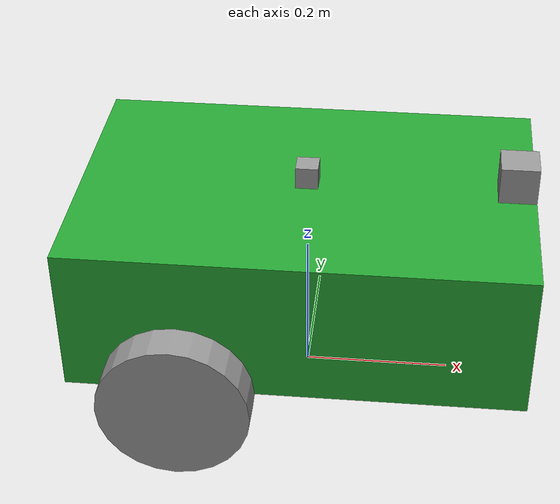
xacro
<?xml version="1.0"?>
<robot xmlns:xacro="http://www.ros.org/wiki/xacro">
  <!-- Main robot structure -->

  <xacro:property name="base_length" value="0.6"/>
  <xacro:property name="base_width" value="0.4"/>
  <xacro:property name="base_height" value="0.2"/>
  <xacro:property name="wheel_radius" value="0.1"/>
  <xacro:property name="wheel_length" value="0.05"/>
  <xacro:property name="camera_size" value="0.05"/>
  <xacro:property name="imu_size" value="0.03"/>

  <!-- Link -->

  <link name="base_footprint" />

  <link name="base_link">
    <visual>
      <geometry>
        <box size="${base_length} ${base_width} ${base_height}"/>
      </geometry>
      <origin xyz="0 0 ${base_height / 2.0}" rpy="0 0 0"/>
      <material name="green"/>
    </visual>
    <collision>
      <geometry>
        <box size="${base_length} ${base_width} ${base_height}"/>
      </geometry>
      <origin xyz="0 0 ${base_height / 2.0}" rpy="0 0 0"/>
    </collision>
    <xacro:box_inertia m="5.0" l="${2 * base_length}" w="${2 * base_width}" h="${2 * base_height}" xyz="0 0 ${base_height / 2.0}" rpy="0 0 0" />
  </link>

  <xacro:macro name="wheel_link" params="prefix">
    <link name="${prefix}_wheel">
      <visual>
        <geometry>
          <cylinder radius="${wheel_radius}" length="${wheel_length}"/>
        </geometry>
        <origin xyz="0 0 0" rpy="${pi / 2.0} 0 0"/>
        <material name="grey"/>
      </visual>
      <collision>
        <geometry>
          <cylinder radius="${wheel_radius}" length="${wheel_length}"/>
        </geometry>
        <origin xyz="0 0 0" rpy="${pi / 2.0} 0 0"/>
      </collision>
      <xacro:cylinder_inertia m="1.0" r="${2 * wheel_radius}" h="${2 * wheel_length}" xyz="0 0 0" rpy="${pi / 2.0} 0 0" />
    </link>
  </xacro:macro>

  <xacro:wheel_link prefix="left" />
  <xacro:wheel_link prefix="right" />

  <link name="caster_wheel">
    <visual>
      <geometry>
        <sphere radius="${wheel_radius / 2.0}"/>
      </geometry>
      <origin xyz="0 0 0" rpy="0 0 0"/>
      <material name="grey"/>
    </visual>
    <collision>
      <geometry>
        <sphere radius="${wheel_radius / 2.0}"/>
      </geometry>
      <origin xyz="0 0 0" rpy="0 0 0"/>
    </collision>
    <xacro:sphere_inertia m="1.0" r="${2 * wheel_radius / 2.0}" xyz="0 0 0" rpy="0 0 0" />
  </link>

  <link name="camera_link">
    <visual>
      <geometry>
        <box size="${camera_size} ${camera_size} ${camera_size}"/>
      </geometry>
      <origin xyz="0 0 0" rpy="0 0 0"/>
      <material name="grey"/>
    </visual>

    <collision>
        <geometry>
            <box size="${camera_size} ${camera_size} ${camera_size}"/>
        </geometry>
        <origin xyz="0.0 0.0 0.0" rpy="0.0 0.0 0.0"/>
    </collision>

    <xacro:box_inertia m="1.0" l="${camera_size}" w="${camera_size}" h="${camera_size}" xyz="0 0 0" rpy="0 0 0" />
  </link>

  <link name="imu_link">
    <visual>
      <geometry>
        <box size="${imu_size} ${imu_size} ${imu_size}"/>
      </geometry>
      <origin xyz="0 0 0" rpy="0 0 0"/>
      <material name="grey"/>
    </visual>

    <collision>
        <geometry>
            <box size="${imu_size} ${imu_size} ${imu_size}"/>
        </geometry>
        <origin xyz="0.0 0.0 0.0" rpy="0.0 0.0 0.0"/>
    </collision>

    <xacro:box_inertia m="1.0" l="${imu_size}" w="${imu_size}" h="${imu_size}" xyz="0 0 0" rpy="0 0 0" />
  </link>

  <!-- Joint -->

  <joint name="base_joint" type="fixed">
    <parent link="base_footprint"/>
    <child link="base_link"/>
    <origin xyz="0.0 0.0 ${wheel_radius}" rpy="0.0 0.0 0.0"/>
  </joint>

  <joint name="base_left_wheel_joint" type="continuous">
    <parent link="base_link"/>
    <child link="left_wheel"/>
    <origin xyz="${-base_length / 4.0} ${(base_width + wheel_length) / 2.0} 0.0" rpy="0 0.0 0.0"/>
    <axis xyz="0.0 1 0.0"/>
  </joint>

  <joint name="base_right_wheel_joint" type="continuous">
    <parent link="base_link"/>
    <child link="right_wheel"/>
    <origin xyz="${-base_length / 4.0} ${-(base_width + wheel_length) / 2.0} 0.0" rpy="0 0.0 0.0"/>
    <axis xyz="0.0 1 0.0"/>
  </joint>

  <joint name="base_caster_wheel_joint" type="fixed">
    <parent link="base_link"/>
    <child link="caster_wheel"/>
    <origin xyz="${base_length / 3.0} 0.0 ${-wheel_radius / 2.0}" rpy="0.0 0.0 0.0"/>
  </joint>

  <joint name="base_camera_joint" type="fixed">
    <parent link="base_link"/>
    <child link="camera_link"/>
    <origin xyz="${base_length / 2 - camera_size / 2.0} 0.0 ${base_height + camera_size / 2.0}" rpy="0.0 0.0 0.0"/>
  </joint>

  <joint name="base_imu_joint" type="fixed">
    <parent link="base_link"/>
    <child link="imu_link"/>
    <origin xyz="0 0.0 ${base_height + imu_size / 2.0}" rpy="0.0 0.0 0.0"/>
  </joint>

</robot>
